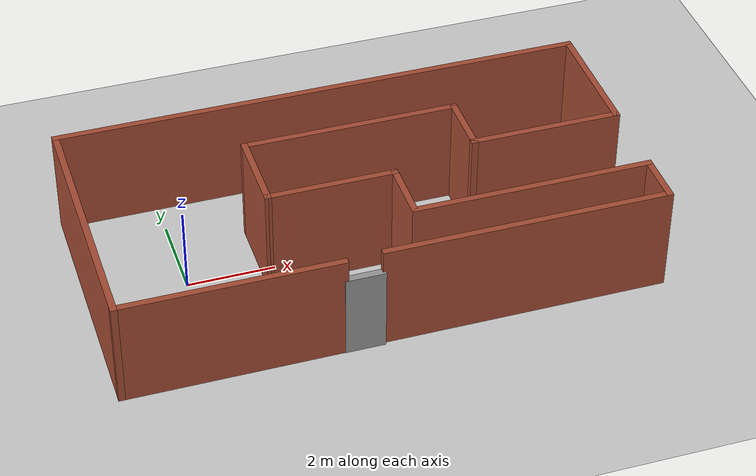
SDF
<sdf version="1.6">
 <world name="default">
  <light name="sun" type="directional">
   <pose>0 0 10 0 -0 0</pose>
   <diffuse>0.8 0.8 0.8 1</diffuse>
   <specular>0.1 0.1 0.1 1</specular>
   <attenuation>
    <range>1000</range>
    <constant>0.9</constant>
    <linear>0.01</linear>
    <quadratic>0.001</quadratic>
   </attenuation>
   <direction>-0.5 0.5 -1</direction>
  </light>
  <model name="ground_plane">
   <static>1</static>
   <link name="link">
    <collision name="collision">
     <geometry><plane><normal>0 0 1</normal><size>100 100</size></plane></geometry>
     <surface><friction><ode><mu>100</mu><mu2>50</mu2></ode></friction></surface>
    </collision>
    <visual name="visual">
     <cast_shadows>0</cast_shadows>
     <geometry><plane><normal>0 0 1</normal><size>100 100</size></plane></geometry>
     <material>
      <script><uri>file://media/materials/scripts/gazebo.material</uri><name>Gazebo/Grey</name></script>
     </material>
    </visual>
   </link>
  </model>
  <gravity>0 0 -9.8</gravity>
  <magnetic_field>6e-06 2.3e-05 -4.2e-05</magnetic_field>
  <atmosphere type="adiabatic"/>
  <physics name="default_physics" default="0" type="ode">
   <max_step_size>0.001</max_step_size>
   <real_time_factor>1</real_time_factor>
   <real_time_update_rate>1000</real_time_update_rate>
  </physics>
  <scene><ambient>0.4 0.4 0.4 1</ambient><background>0.7 0.7 0.7 1</background><shadows>1</shadows></scene>
  <spherical_coordinates>
   <surface_model>EARTH_WGS84</surface_model>
   <latitude_deg>0</latitude_deg>
   <longitude_deg>0</longitude_deg>
   <elevation>0</elevation>
   <heading_deg>0</heading_deg>
  </spherical_coordinates>
  <model name="my_room_1">
   <pose>3.89576 -0.099805 0 0 -0 0</pose>
   <link name="Door_0">
    <collision name="Door_0_Collision">
     <geometry><box><size>0.9 0.17 2</size></box></geometry>
     <pose>0 0 1 0 -0 0</pose>
    </collision>
    <visual name="Door_0_Visual">
     <pose>0 0 1 0 -0 0</pose>
     <geometry><box><size>0.9 0.17 2</size></box></geometry>
     <material>
      <script><uri>file://media/materials/scripts/gazebo.material</uri><name>Gazebo/Grey</name></script>
     </material>
    </visual>
    <pose>-0.763575 -2.925 0 0 -0 0</pose>
   </link>
   <link name="Wall_10">
    <collision name="Wall_10_Collision">
     <geometry><box><size>2 0.15 2.5</size></box></geometry>
     <pose>0 0 1.25 0 -0 0</pose>
    </collision>
    <visual name="Wall_10_Visual">
     <pose>0 0 1.25 0 -0 0</pose>
     <geometry><box><size>2 0.15 2.5</size></box></geometry>
     <material>
      <script><uri>file://media/materials/scripts/gazebo.material</uri><name>Gazebo/Bricks</name></script>
      <ambient>1 1 1 1</ambient>
     </material>
    </visual>
    <pose>-2.15 0.5 0 0 0 -1.5708</pose>
   </link>
   <link name="Wall_11">
    <collision name="Wall_11_Collision">
     <geometry><box><size>3 0.15 2.5</size></box></geometry>
     <pose>0 0 1.25 0 -0 0</pose>
    </collision>
    <visual name="Wall_11_Visual">
     <pose>0 0 1.25 0 -0 0</pose>
     <geometry><box><size>3 0.15 2.5</size></box></geometry>
     <material>
      <script><uri>file://media/materials/scripts/gazebo.material</uri><name>Gazebo/Bricks</name></script>
      <ambient>1 1 1 1</ambient>
     </material>
    </visual>
    <pose>-0.725 -0.425 0 0 -0 0</pose>
   </link>
   <link name="Wall_12">
    <collision name="Wall_12_Collision">
     <geometry><box><size>1.5 0.15 2.5</size></box></geometry>
     <pose>0 0 1.25 0 -0 0</pose>
    </collision>
    <visual name="Wall_12_Visual">
     <pose>0 0 1.25 0 -0 0</pose>
     <geometry><box><size>1.5 0.15 2.5</size></box></geometry>
     <material>
      <script><uri>file://media/materials/scripts/gazebo.material</uri><name>Gazebo/Bricks</name></script>
      <ambient>1 1 1 1</ambient>
     </material>
    </visual>
    <pose>0.7 -1.1 0 0 0 -1.5708</pose>
   </link>
   <link name="Wall_13">
    <collision name="Wall_13_Collision">
     <geometry><box><size>5.5 0.15 2.5</size></box></geometry>
     <pose>0 0 1.25 0 -0 0</pose>
    </collision>
    <visual name="Wall_13_Visual">
     <pose>0 0 1.25 0 -0 0</pose>
     <geometry><box><size>5.5 0.15 2.5</size></box></geometry>
     <material>
      <script><uri>file://media/materials/scripts/gazebo.material</uri><name>Gazebo/Bricks</name></script>
      <ambient>1 1 1 1</ambient>
     </material>
    </visual>
    <pose>3.375 -1.775 0 0 -0 0</pose>
   </link>
   <link name="Wall_14">
    <collision name="Wall_14_Collision">
     <geometry><box><size>1.25 0.15 2.5</size></box></geometry>
     <pose>0 0 1.25 0 -0 0</pose>
    </collision>
    <visual name="Wall_14_Visual">
     <pose>0 0 1.25 0 -0 0</pose>
     <geometry><box><size>1.25 0.15 2.5</size></box></geometry>
     <material>
      <script><uri>file://media/materials/scripts/gazebo.material</uri><name>Gazebo/Bricks</name></script>
      <ambient>1 1 1 1</ambient>
     </material>
    </visual>
    <pose>6.05 -2.325 0 0 0 -1.5708</pose>
   </link>
   <link name="Wall_15">
    <collision name="Wall_15_Collision">
     <geometry><box><size>6.5 0.15 2.5</size></box></geometry>
     <pose>0 0 1.25 0 -0 0</pose>
    </collision>
    <visual name="Wall_15_Visual">
     <pose>0 0 1.25 0 -0 0</pose>
     <geometry><box><size>6.5 0.15 2.5</size></box></geometry>
     <material>
      <script><uri>file://media/materials/scripts/gazebo.material</uri><name>Gazebo/Bricks</name></script>
      <ambient>1 1 1 1</ambient>
     </material>
    </visual>
    <pose>2.875 -2.875 0 0 -0 3.14159</pose>
   </link>
   <link name="Wall_3">
    <collision name="Wall_3_Collision">
     <geometry><box><size>5 0.15 2.5</size></box></geometry>
     <pose>0 0 1.25 0 -0 0</pose>
    </collision>
    <visual name="Wall_3_Visual">
     <pose>0 0 1.25 0 -0 0</pose>
     <geometry><box><size>5 0.15 2.5</size></box></geometry>
     <material>
      <script><uri>file://media/materials/scripts/gazebo.material</uri><name>Gazebo/Bricks</name></script>
      <ambient>0.996078 0.47451 0.0196078 1</ambient>
     </material>
    </visual>
    <pose>-3.625 -2.925 0 0 -0 3.14159</pose>
   </link>
   <link name="Wall_4">
    <collision name="Wall_4_Collision">
     <geometry><box><size>6 0.15 2.5</size></box></geometry>
     <pose>0 0 1.25 0 -0 0</pose>
    </collision>
    <visual name="Wall_4_Visual">
     <pose>0 0 1.25 0 -0 0</pose>
     <geometry><box><size>6 0.15 2.5</size></box></geometry>
     <material>
      <script><uri>file://media/materials/scripts/gazebo.material</uri><name>Gazebo/Bricks</name></script>
      <ambient>1 1 1 1</ambient>
     </material>
    </visual>
    <pose>-6.05 0 0 0 -0 1.5708</pose>
   </link>
   <link name="Wall_5">
    <collision name="Wall_5_Collision">
     <geometry><box><size>12.25 0.15 2.5</size></box></geometry>
     <pose>0 0 1.25 0 -0 0</pose>
    </collision>
    <visual name="Wall_5_Visual">
     <pose>0 0 1.25 0 -0 0</pose>
     <geometry><box><size>12.25 0.15 2.5</size></box></geometry>
     <material>
      <script><uri>file://media/materials/scripts/gazebo.material</uri><name>Gazebo/Bricks</name></script>
      <ambient>1 1 1 1</ambient>
     </material>
    </visual>
    <pose>0 2.925 0 0 -0 0</pose>
   </link>
   <link name="Wall_6">
    <collision name="Wall_6_Collision">
     <geometry><box><size>3 0.15 2.5</size></box></geometry>
     <pose>0 0 1.25 0 -0 0</pose>
    </collision>
    <visual name="Wall_6_Visual">
     <pose>0 0 1.25 0 -0 0</pose>
     <geometry><box><size>3 0.15 2.5</size></box></geometry>
     <material>
      <script><uri>file://media/materials/scripts/gazebo.material</uri><name>Gazebo/Bricks</name></script>
      <ambient>1 1 1 1</ambient>
     </material>
    </visual>
    <pose>6.05 1.5 0 0 0 -1.5708</pose>
   </link>
   <link name="Wall_7">
    <collision name="Wall_7_Collision">
     <geometry><box><size>3.5 0.15 2.5</size></box></geometry>
     <pose>0 0 1.25 0 -0 0</pose>
    </collision>
    <visual name="Wall_7_Visual">
     <pose>0 0 1.25 0 -0 0</pose>
     <geometry><box><size>3.5 0.15 2.5</size></box></geometry>
     <material>
      <script><uri>file://media/materials/scripts/gazebo.material</uri><name>Gazebo/Bricks</name></script>
      <ambient>1 1 1 1</ambient>
     </material>
    </visual>
    <pose>4.375 0.075 0 0 -0 3.14159</pose>
   </link>
   <link name="Wall_8">
    <collision name="Wall_8_Collision">
     <geometry><box><size>1.5 0.15 2.5</size></box></geometry>
     <pose>0 0 1.25 0 -0 0</pose>
    </collision>
    <visual name="Wall_8_Visual">
     <pose>0 0 1.25 0 -0 0</pose>
     <geometry><box><size>1.5 0.15 2.5</size></box></geometry>
     <material>
      <script><uri>file://media/materials/scripts/gazebo.material</uri><name>Gazebo/Bricks</name></script>
      <ambient>1 1 1 1</ambient>
     </material>
    </visual>
    <pose>2.7 0.75 0 0 -0 1.5708</pose>
   </link>
   <link name="Wall_9">
    <collision name="Wall_9_Collision">
     <geometry><box><size>5 0.15 2.5</size></box></geometry>
     <pose>0 0 1.25 0 -0 0</pose>
    </collision>
    <visual name="Wall_9_Visual">
     <pose>0 0 1.25 0 -0 0</pose>
     <geometry><box><size>5 0.15 2.5</size></box></geometry>
     <material>
      <script><uri>file://media/materials/scripts/gazebo.material</uri><name>Gazebo/Bricks</name></script>
      <ambient>1 1 1 1</ambient>
     </material>
    </visual>
    <pose>0.275 1.425 0 0 -0 3.14159</pose>
   </link>
   <static>1</static>
  </model>
 </world>
</sdf>
